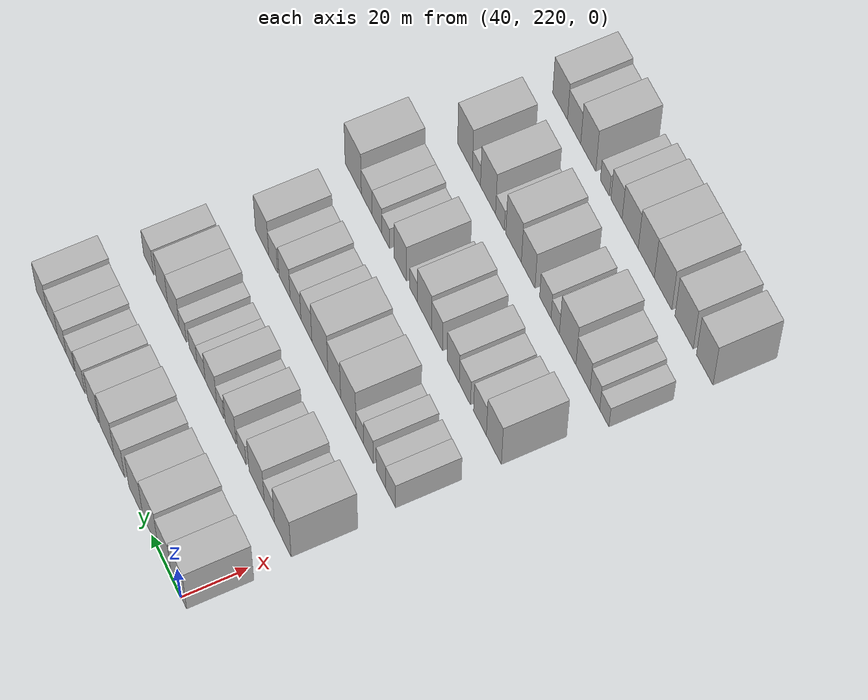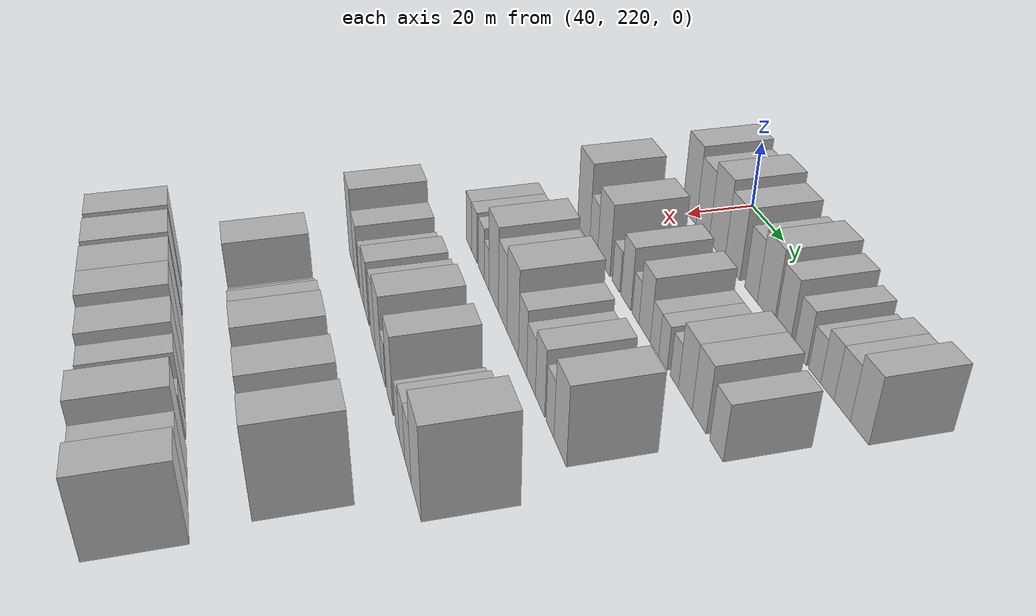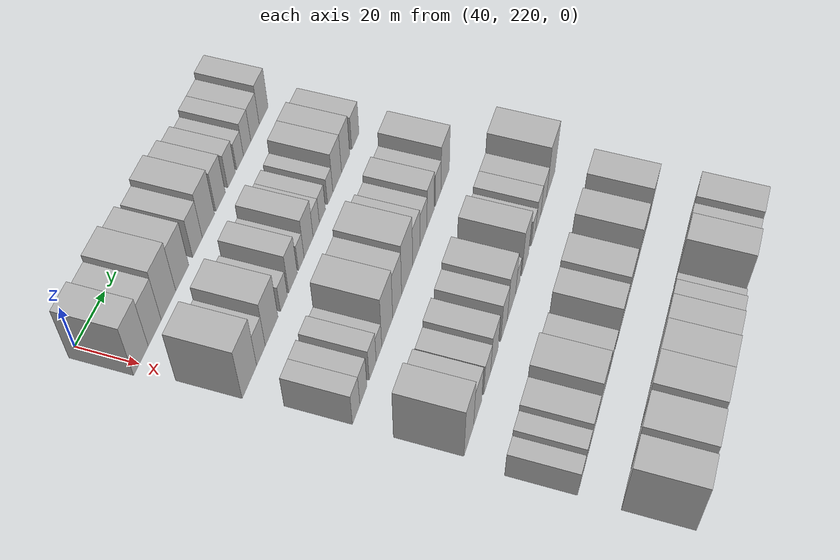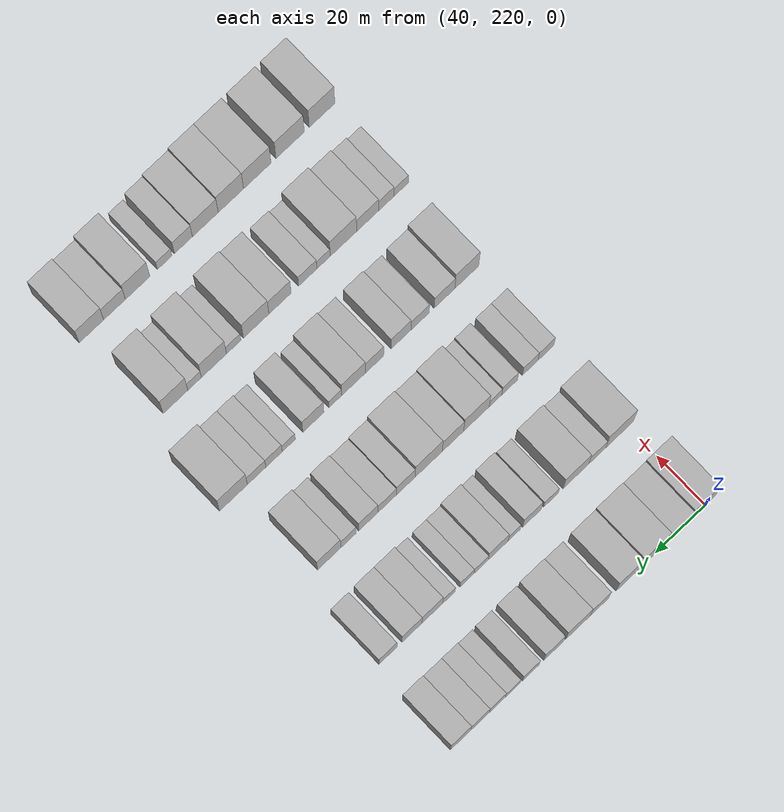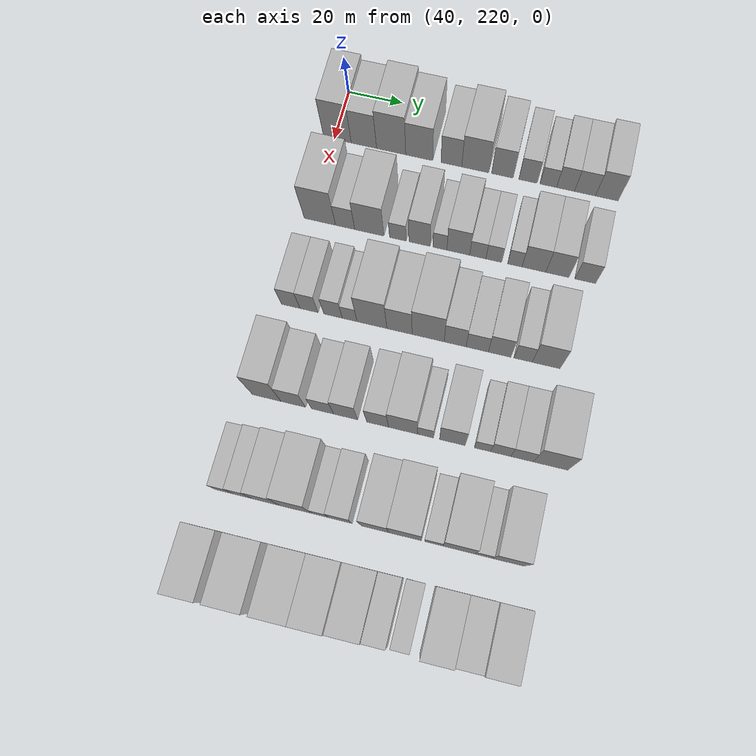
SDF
<sdf version="1.6">
 <world name="default">
  <model name="building_80">
   <static>1</static>
   <pose>50.0000 221.1915 0 0.000000 0.000000 0.000000</pose>
   <link name="link">
    <pose>0 0 12.00 0 0 0</pose>
    <collision name="collision"><geometry><box><size>20.0000 10.1454 24.0000</size></box></geometry></collision>
    <visual name="visual">
     <cast_shadows>0</cast_shadows>
     <geometry><box><size>20.0000 10.1454 24.0000</size></box></geometry>
     <material>
      <script>
       <uri>model://HANNAS_wall/materials/scripts</uri>
       <uri>model://HANNAS_wall/materials/textures</uri>
       <name>vrc/HANNAS_wall</name>
      </script>
     </material>
    </visual>
   </link>
  </model>
  <model name="building_81">
   <static>1</static>
   <pose>50.0000 230.9055 0 0.000000 0.000000 0.000000</pose>
   <link name="link">
    <pose>0 0 10.50 0 0 0</pose>
    <collision name="collision"><geometry><box><size>20.0000 9.2827 21.0000</size></box></geometry></collision>
    <visual name="visual">
     <cast_shadows>0</cast_shadows>
     <geometry><box><size>20.0000 9.2827 21.0000</size></box></geometry>
     <material>
      <script>
       <uri>model://HANNAS_wall/materials/scripts</uri>
       <uri>model://HANNAS_wall/materials/textures</uri>
       <name>vrc/HANNAS_wall</name>
      </script>
     </material>
    </visual>
   </link>
  </model>
  <model name="building_82">
   <static>1</static>
   <pose>50.0000 240.8791 0 0.000000 0.000000 0.000000</pose>
   <link name="link">
    <pose>0 0 12.00 0 0 0</pose>
    <collision name="collision"><geometry><box><size>20.0000 10.6645 24.0000</size></box></geometry></collision>
    <visual name="visual">
     <cast_shadows>0</cast_shadows>
     <geometry><box><size>20.0000 10.6645 24.0000</size></box></geometry>
     <material>
      <script>
       <uri>model://HANNAS_wall/materials/scripts</uri>
       <uri>model://HANNAS_wall/materials/textures</uri>
       <name>vrc/HANNAS_wall</name>
      </script>
     </material>
    </visual>
   </link>
  </model>
  <model name="building_83">
   <static>1</static>
   <pose>50.0000 251.1147 0 0.000000 0.000000 0.000000</pose>
   <link name="link">
    <pose>0 0 10.50 0 0 0</pose>
    <collision name="collision"><geometry><box><size>20.0000 9.8066 21.0000</size></box></geometry></collision>
    <visual name="visual">
     <cast_shadows>0</cast_shadows>
     <geometry><box><size>20.0000 9.8066 21.0000</size></box></geometry>
     <material>
      <script>
       <uri>model://HANNAS_wall/materials/scripts</uri>
       <uri>model://HANNAS_wall/materials/textures</uri>
       <name>vrc/HANNAS_wall</name>
      </script>
     </material>
    </visual>
   </link>
  </model>
  <model name="building_84">
   <static>1</static>
   <pose>50.0000 262.7763 0 0.000000 0.000000 0.000000</pose>
   <link name="link">
    <pose>0 0 9.00 0 0 0</pose>
    <collision name="collision"><geometry><box><size>20.0000 7.5166 18.0000</size></box></geometry></collision>
    <visual name="visual">
     <cast_shadows>0</cast_shadows>
     <geometry><box><size>20.0000 7.5166 18.0000</size></box></geometry>
     <material>
      <script>
       <uri>model://HANNAS_wall/materials/scripts</uri>
       <uri>model://HANNAS_wall/materials/textures</uri>
       <name>vrc/HANNAS_wall</name>
      </script>
     </material>
    </visual>
   </link>
  </model>
  <model name="building_85">
   <static>1</static>
   <pose>50.0000 271.4097 0 0.000000 0.000000 0.000000</pose>
   <link name="link">
    <pose>0 0 10.50 0 0 0</pose>
    <collision name="collision"><geometry><box><size>20.0000 9.7501 21.0000</size></box></geometry></collision>
    <visual name="visual">
     <cast_shadows>0</cast_shadows>
     <geometry><box><size>20.0000 9.7501 21.0000</size></box></geometry>
     <material>
      <script>
       <uri>model://HANNAS_wall/materials/scripts</uri>
       <uri>model://HANNAS_wall/materials/textures</uri>
       <name>vrc/HANNAS_wall</name>
      </script>
     </material>
    </visual>
   </link>
  </model>
  <model name="building_86">
   <static>1</static>
   <pose>50.0000 281.1702 0 0.000000 0.000000 0.000000</pose>
   <link name="link">
    <pose>0 0 9.00 0 0 0</pose>
    <collision name="collision"><geometry><box><size>20.0000 7.7707 18.0000</size></box></geometry></collision>
    <visual name="visual">
     <cast_shadows>0</cast_shadows>
     <geometry><box><size>20.0000 7.7707 18.0000</size></box></geometry>
     <material>
      <script>
       <uri>model://HANNAS_wall/materials/scripts</uri>
       <uri>model://HANNAS_wall/materials/textures</uri>
       <name>vrc/HANNAS_wall</name>
      </script>
     </material>
    </visual>
   </link>
  </model>
  <model name="building_87">
   <static>1</static>
   <pose>50.0000 290.3380 0 0.000000 0.000000 0.000000</pose>
   <link name="link">
    <pose>0 0 7.50 0 0 0</pose>
    <collision name="collision"><geometry><box><size>20.0000 6.5649 15.0000</size></box></geometry></collision>
    <visual name="visual">
     <cast_shadows>0</cast_shadows>
     <geometry><box><size>20.0000 6.5649 15.0000</size></box></geometry>
     <material>
      <script>
       <uri>model://HANNAS_wall/materials/scripts</uri>
       <uri>model://HANNAS_wall/materials/textures</uri>
       <name>vrc/HANNAS_wall</name>
      </script>
     </material>
    </visual>
   </link>
  </model>
  <model name="building_88">
   <static>1</static>
   <pose>50.0000 297.5629 0 0.000000 0.000000 0.000000</pose>
   <link name="link">
    <pose>0 0 6.00 0 0 0</pose>
    <collision name="collision"><geometry><box><size>20.0000 5.8850 12.0000</size></box></geometry></collision>
    <visual name="visual">
     <cast_shadows>0</cast_shadows>
     <geometry><box><size>20.0000 5.8850 12.0000</size></box></geometry>
     <material>
      <script>
       <uri>model://HANNAS_wall/materials/scripts</uri>
       <uri>model://HANNAS_wall/materials/textures</uri>
       <name>vrc/HANNAS_wall</name>
      </script>
     </material>
    </visual>
   </link>
  </model>
  <model name="building_89">
   <static>1</static>
   <pose>50.0000 303.7001 0 0.000000 0.000000 0.000000</pose>
   <link name="link">
    <pose>0 0 7.50 0 0 0</pose>
    <collision name="collision"><geometry><box><size>20.0000 6.3894 15.0000</size></box></geometry></collision>
    <visual name="visual">
     <cast_shadows>0</cast_shadows>
     <geometry><box><size>20.0000 6.3894 15.0000</size></box></geometry>
     <material>
      <script>
       <uri>model://HANNAS_wall/materials/scripts</uri>
       <uri>model://HANNAS_wall/materials/textures</uri>
       <name>vrc/HANNAS_wall</name>
      </script>
     </material>
    </visual>
   </link>
  </model>
  <model name="building_90">
   <static>1</static>
   <pose>50.0000 310.6107 0 0.000000 0.000000 0.000000</pose>
   <link name="link">
    <pose>0 0 7.50 0 0 0</pose>
    <collision name="collision"><geometry><box><size>20.0000 7.4317 15.0000</size></box></geometry></collision>
    <visual name="visual">
     <cast_shadows>0</cast_shadows>
     <geometry><box><size>20.0000 7.4317 15.0000</size></box></geometry>
     <material>
      <script>
       <uri>model://HANNAS_wall/materials/scripts</uri>
       <uri>model://HANNAS_wall/materials/textures</uri>
       <name>vrc/HANNAS_wall</name>
      </script>
     </material>
    </visual>
   </link>
  </model>
  <model name="building_91">
   <static>1</static>
   <pose>50.0000 318.3398 0 0.000000 0.000000 0.000000</pose>
   <link name="link">
    <pose>0 0 9.00 0 0 0</pose>
    <collision name="collision"><geometry><box><size>20.0000 8.0265 18.0000</size></box></geometry></collision>
    <visual name="visual">
     <cast_shadows>0</cast_shadows>
     <geometry><box><size>20.0000 8.0265 18.0000</size></box></geometry>
     <material>
      <script>
       <uri>model://HANNAS_wall/materials/scripts</uri>
       <uri>model://HANNAS_wall/materials/textures</uri>
       <name>vrc/HANNAS_wall</name>
      </script>
     </material>
    </visual>
   </link>
  </model>
  <model name="building_201">
   <static>1</static>
   <pose>82.0000 223.6437 0 0.000000 0.000000 0.000000</pose>
   <link name="link">
    <pose>0 0 12.00 0 0 0</pose>
    <collision name="collision"><geometry><box><size>20.0000 11.1601 24.0000</size></box></geometry></collision>
    <visual name="visual">
     <cast_shadows>0</cast_shadows>
     <geometry><box><size>20.0000 11.1601 24.0000</size></box></geometry>
     <material>
      <script>
       <uri>model://HANNAS_wall/materials/scripts</uri>
       <uri>model://HANNAS_wall/materials/textures</uri>
       <name>vrc/HANNAS_wall</name>
      </script>
     </material>
    </visual>
   </link>
  </model>
  <model name="building_202">
   <static>1</static>
   <pose>82.0000 232.6557 0 0.000000 0.000000 0.000000</pose>
   <link name="link">
    <pose>0 0 7.50 0 0 0</pose>
    <collision name="collision"><geometry><box><size>20.0000 6.8640 15.0000</size></box></geometry></collision>
    <visual name="visual">
     <cast_shadows>0</cast_shadows>
     <geometry><box><size>20.0000 6.8640 15.0000</size></box></geometry>
     <material>
      <script>
       <uri>model://HANNAS_wall/materials/scripts</uri>
       <uri>model://HANNAS_wall/materials/textures</uri>
       <name>vrc/HANNAS_wall</name>
      </script>
     </material>
    </visual>
   </link>
  </model>
  <model name="building_203">
   <static>1</static>
   <pose>82.0000 241.2572 0 0.000000 0.000000 0.000000</pose>
   <link name="link">
    <pose>0 0 10.50 0 0 0</pose>
    <collision name="collision"><geometry><box><size>20.0000 10.3390 21.0000</size></box></geometry></collision>
    <visual name="visual">
     <cast_shadows>0</cast_shadows>
     <geometry><box><size>20.0000 10.3390 21.0000</size></box></geometry>
     <material>
      <script>
       <uri>model://HANNAS_wall/materials/scripts</uri>
       <uri>model://HANNAS_wall/materials/textures</uri>
       <name>vrc/HANNAS_wall</name>
      </script>
     </material>
    </visual>
   </link>
  </model>
  <model name="building_204">
   <static>1</static>
   <pose>82.0000 251.3590 0 0.000000 0.000000 0.000000</pose>
   <link name="link">
    <pose>0 0 6.00 0 0 0</pose>
    <collision name="collision"><geometry><box><size>20.0000 5.8646 12.0000</size></box></geometry></collision>
    <visual name="visual">
     <cast_shadows>0</cast_shadows>
     <geometry><box><size>20.0000 5.8646 12.0000</size></box></geometry>
     <material>
      <script>
       <uri>model://HANNAS_wall/materials/scripts</uri>
       <uri>model://HANNAS_wall/materials/textures</uri>
       <name>vrc/HANNAS_wall</name>
      </script>
     </material>
    </visual>
   </link>
  </model>
  <model name="building_205">
   <static>1</static>
   <pose>82.0000 259.0124 0 0.000000 0.000000 0.000000</pose>
   <link name="link">
    <pose>0 0 9.00 0 0 0</pose>
    <collision name="collision"><geometry><box><size>20.0000 7.4422 18.0000</size></box></geometry></collision>
    <visual name="visual">
     <cast_shadows>0</cast_shadows>
     <geometry><box><size>20.0000 7.4422 18.0000</size></box></geometry>
     <material>
      <script>
       <uri>model://HANNAS_wall/materials/scripts</uri>
       <uri>model://HANNAS_wall/materials/textures</uri>
       <name>vrc/HANNAS_wall</name>
      </script>
     </material>
    </visual>
   </link>
  </model>
  <model name="building_206">
   <static>1</static>
   <pose>82.0000 266.1731 0 0.000000 0.000000 0.000000</pose>
   <link name="link">
    <pose>0 0 6.00 0 0 0</pose>
    <collision name="collision"><geometry><box><size>20.0000 4.8792 12.0000</size></box></geometry></collision>
    <visual name="visual">
     <cast_shadows>0</cast_shadows>
     <geometry><box><size>20.0000 4.8792 12.0000</size></box></geometry>
     <material>
      <script>
       <uri>model://HANNAS_wall/materials/scripts</uri>
       <uri>model://HANNAS_wall/materials/textures</uri>
       <name>vrc/HANNAS_wall</name>
      </script>
     </material>
    </visual>
   </link>
  </model>
  <model name="building_207">
   <static>1</static>
   <pose>82.0000 272.6101 0 0.000000 0.000000 0.000000</pose>
   <link name="link">
    <pose>0 0 9.00 0 0 0</pose>
    <collision name="collision"><geometry><box><size>20.0000 7.9948 18.0000</size></box></geometry></collision>
    <visual name="visual">
     <cast_shadows>0</cast_shadows>
     <geometry><box><size>20.0000 7.9948 18.0000</size></box></geometry>
     <material>
      <script>
       <uri>model://HANNAS_wall/materials/scripts</uri>
       <uri>model://HANNAS_wall/materials/textures</uri>
       <name>vrc/HANNAS_wall</name>
      </script>
     </material>
    </visual>
   </link>
  </model>
  <model name="building_208">
   <static>1</static>
   <pose>82.0000 279.4374 0 0.000000 0.000000 0.000000</pose>
   <link name="link">
    <pose>0 0 6.00 0 0 0</pose>
    <collision name="collision"><geometry><box><size>20.0000 5.6598 12.0000</size></box></geometry></collision>
    <visual name="visual">
     <cast_shadows>0</cast_shadows>
     <geometry><box><size>20.0000 5.6598 12.0000</size></box></geometry>
     <material>
      <script>
       <uri>model://HANNAS_wall/materials/scripts</uri>
       <uri>model://HANNAS_wall/materials/textures</uri>
       <name>vrc/HANNAS_wall</name>
      </script>
     </material>
    </visual>
   </link>
  </model>
  <model name="building_209">
   <static>1</static>
   <pose>82.0000 285.0318 0 0.000000 0.000000 0.000000</pose>
   <link name="link">
    <pose>0 0 6.00 0 0 0</pose>
    <collision name="collision"><geometry><box><size>20.0000 5.5289 12.0000</size></box></geometry></collision>
    <visual name="visual">
     <cast_shadows>0</cast_shadows>
     <geometry><box><size>20.0000 5.5289 12.0000</size></box></geometry>
     <material>
      <script>
       <uri>model://HANNAS_wall/materials/scripts</uri>
       <uri>model://HANNAS_wall/materials/textures</uri>
       <name>vrc/HANNAS_wall</name>
      </script>
     </material>
    </visual>
   </link>
  </model>
  <model name="building_210">
   <static>1</static>
   <pose>82.0000 292.2857 0 0.000000 0.000000 0.000000</pose>
   <link name="link">
    <pose>0 0 6.00 0 0 0</pose>
    <collision name="collision"><geometry><box><size>20.0000 4.9790 12.0000</size></box></geometry></collision>
    <visual name="visual">
     <cast_shadows>0</cast_shadows>
     <geometry><box><size>20.0000 4.9790 12.0000</size></box></geometry>
     <material>
      <script>
       <uri>model://HANNAS_wall/materials/scripts</uri>
       <uri>model://HANNAS_wall/materials/textures</uri>
       <name>vrc/HANNAS_wall</name>
      </script>
     </material>
    </visual>
   </link>
  </model>
  <model name="building_211">
   <static>1</static>
   <pose>82.0000 298.9141 0 0.000000 0.000000 0.000000</pose>
   <link name="link">
    <pose>0 0 9.00 0 0 0</pose>
    <collision name="collision"><geometry><box><size>20.0000 8.2778 18.0000</size></box></geometry></collision>
    <visual name="visual">
     <cast_shadows>0</cast_shadows>
     <geometry><box><size>20.0000 8.2778 18.0000</size></box></geometry>
     <material>
      <script>
       <uri>model://HANNAS_wall/materials/scripts</uri>
       <uri>model://HANNAS_wall/materials/textures</uri>
       <name>vrc/HANNAS_wall</name>
      </script>
     </material>
    </visual>
   </link>
  </model>
  <model name="building_212">
   <static>1</static>
   <pose>82.0000 307.0344 0 0.000000 0.000000 0.000000</pose>
   <link name="link">
    <pose>0 0 9.00 0 0 0</pose>
    <collision name="collision"><geometry><box><size>20.0000 7.9627 18.0000</size></box></geometry></collision>
    <visual name="visual">
     <cast_shadows>0</cast_shadows>
     <geometry><box><size>20.0000 7.9627 18.0000</size></box></geometry>
     <material>
      <script>
       <uri>model://HANNAS_wall/materials/scripts</uri>
       <uri>model://HANNAS_wall/materials/textures</uri>
       <name>vrc/HANNAS_wall</name>
      </script>
     </material>
    </visual>
   </link>
  </model>
  <model name="building_213">
   <static>1</static>
   <pose>82.0000 316.5923 0 0.000000 0.000000 0.000000</pose>
   <link name="link">
    <pose>0 0 7.50 0 0 0</pose>
    <collision name="collision"><geometry><box><size>20.0000 7.1532 15.0000</size></box></geometry></collision>
    <visual name="visual">
     <cast_shadows>0</cast_shadows>
     <geometry><box><size>20.0000 7.1532 15.0000</size></box></geometry>
     <material>
      <script>
       <uri>model://HANNAS_wall/materials/scripts</uri>
       <uri>model://HANNAS_wall/materials/textures</uri>
       <name>vrc/HANNAS_wall</name>
      </script>
     </material>
    </visual>
   </link>
  </model>
  <model name="building_320">
   <static>1</static>
   <pose>114.0000 222.4756 0 0.000000 0.000000 0.000000</pose>
   <link name="link">
    <pose>0 0 7.50 0 0 0</pose>
    <collision name="collision"><geometry><box><size>20.0000 6.4086 15.0000</size></box></geometry></collision>
    <visual name="visual">
     <cast_shadows>0</cast_shadows>
     <geometry><box><size>20.0000 6.4086 15.0000</size></box></geometry>
     <material>
      <script>
       <uri>model://HANNAS_wall/materials/scripts</uri>
       <uri>model://HANNAS_wall/materials/textures</uri>
       <name>vrc/HANNAS_wall</name>
      </script>
     </material>
    </visual>
   </link>
  </model>
  <model name="building_321">
   <static>1</static>
   <pose>114.0000 228.8132 0 0.000000 0.000000 0.000000</pose>
   <link name="link">
    <pose>0 0 7.50 0 0 0</pose>
    <collision name="collision"><geometry><box><size>20.0000 6.2664 15.0000</size></box></geometry></collision>
    <visual name="visual">
     <cast_shadows>0</cast_shadows>
     <geometry><box><size>20.0000 6.2664 15.0000</size></box></geometry>
     <material>
      <script>
       <uri>model://HANNAS_wall/materials/scripts</uri>
       <uri>model://HANNAS_wall/materials/textures</uri>
       <name>vrc/HANNAS_wall</name>
      </script>
     </material>
    </visual>
   </link>
  </model>
  <model name="building_322">
   <static>1</static>
   <pose>114.0000 237.1206 0 0.000000 0.000000 0.000000</pose>
   <link name="link">
    <pose>0 0 7.50 0 0 0</pose>
    <collision name="collision"><geometry><box><size>20.0000 6.3484 15.0000</size></box></geometry></collision>
    <visual name="visual">
     <cast_shadows>0</cast_shadows>
     <geometry><box><size>20.0000 6.3484 15.0000</size></box></geometry>
     <material>
      <script>
       <uri>model://HANNAS_wall/materials/scripts</uri>
       <uri>model://HANNAS_wall/materials/textures</uri>
       <name>vrc/HANNAS_wall</name>
      </script>
     </material>
    </visual>
   </link>
  </model>
  <model name="building_323">
   <static>1</static>
   <pose>114.0000 242.8376 0 0.000000 0.000000 0.000000</pose>
   <link name="link">
    <pose>0 0 6.00 0 0 0</pose>
    <collision name="collision"><geometry><box><size>20.0000 5.0856 12.0000</size></box></geometry></collision>
    <visual name="visual">
     <cast_shadows>0</cast_shadows>
     <geometry><box><size>20.0000 5.0856 12.0000</size></box></geometry>
     <material>
      <script>
       <uri>model://HANNAS_wall/materials/scripts</uri>
       <uri>model://HANNAS_wall/materials/textures</uri>
       <name>vrc/HANNAS_wall</name>
      </script>
     </material>
    </visual>
   </link>
  </model>
  <model name="building_324">
   <static>1</static>
   <pose>114.0000 250.5163 0 0.000000 0.000000 0.000000</pose>
   <link name="link">
    <pose>0 0 12.00 0 0 0</pose>
    <collision name="collision"><geometry><box><size>20.0000 10.2716 24.0000</size></box></geometry></collision>
    <visual name="visual">
     <cast_shadows>0</cast_shadows>
     <geometry><box><size>20.0000 10.2716 24.0000</size></box></geometry>
     <material>
      <script>
       <uri>model://HANNAS_wall/materials/scripts</uri>
       <uri>model://HANNAS_wall/materials/textures</uri>
       <name>vrc/HANNAS_wall</name>
      </script>
     </material>
    </visual>
   </link>
  </model>
  <model name="building_325">
   <static>1</static>
   <pose>114.0000 259.9618 0 0.000000 0.000000 0.000000</pose>
   <link name="link">
    <pose>0 0 10.50 0 0 0</pose>
    <collision name="collision"><geometry><box><size>20.0000 8.6194 21.0000</size></box></geometry></collision>
    <visual name="visual">
     <cast_shadows>0</cast_shadows>
     <geometry><box><size>20.0000 8.6194 21.0000</size></box></geometry>
     <material>
      <script>
       <uri>model://HANNAS_wall/materials/scripts</uri>
       <uri>model://HANNAS_wall/materials/textures</uri>
       <name>vrc/HANNAS_wall</name>
      </script>
     </material>
    </visual>
   </link>
  </model>
  <model name="building_326">
   <static>1</static>
   <pose>114.0000 269.7150 0 0.000000 0.000000 0.000000</pose>
   <link name="link">
    <pose>0 0 12.00 0 0 0</pose>
    <collision name="collision"><geometry><box><size>20.0000 10.8871 24.0000</size></box></geometry></collision>
    <visual name="visual">
     <cast_shadows>0</cast_shadows>
     <geometry><box><size>20.0000 10.8871 24.0000</size></box></geometry>
     <material>
      <script>
       <uri>model://HANNAS_wall/materials/scripts</uri>
       <uri>model://HANNAS_wall/materials/textures</uri>
       <name>vrc/HANNAS_wall</name>
      </script>
     </material>
    </visual>
   </link>
  </model>
  <model name="building_327">
   <static>1</static>
   <pose>114.0000 278.8699 0 0.000000 0.000000 0.000000</pose>
   <link name="link">
    <pose>0 0 9.00 0 0 0</pose>
    <collision name="collision"><geometry><box><size>20.0000 7.4226 18.0000</size></box></geometry></collision>
    <visual name="visual">
     <cast_shadows>0</cast_shadows>
     <geometry><box><size>20.0000 7.4226 18.0000</size></box></geometry>
     <material>
      <script>
       <uri>model://HANNAS_wall/materials/scripts</uri>
       <uri>model://HANNAS_wall/materials/textures</uri>
       <name>vrc/HANNAS_wall</name>
      </script>
     </material>
    </visual>
   </link>
  </model>
  <model name="building_328">
   <static>1</static>
   <pose>114.0000 286.3080 0 0.000000 0.000000 0.000000</pose>
   <link name="link">
    <pose>0 0 7.50 0 0 0</pose>
    <collision name="collision"><geometry><box><size>20.0000 7.4537 15.0000</size></box></geometry></collision>
    <visual name="visual">
     <cast_shadows>0</cast_shadows>
     <geometry><box><size>20.0000 7.4537 15.0000</size></box></geometry>
     <material>
      <script>
       <uri>model://HANNAS_wall/materials/scripts</uri>
       <uri>model://HANNAS_wall/materials/textures</uri>
       <name>vrc/HANNAS_wall</name>
      </script>
     </material>
    </visual>
   </link>
  </model>
  <model name="building_329">
   <static>1</static>
   <pose>114.0000 293.8536 0 0.000000 0.000000 0.000000</pose>
   <link name="link">
    <pose>0 0 9.00 0 0 0</pose>
    <collision name="collision"><geometry><box><size>20.0000 7.6375 18.0000</size></box></geometry></collision>
    <visual name="visual">
     <cast_shadows>0</cast_shadows>
     <geometry><box><size>20.0000 7.6375 18.0000</size></box></geometry>
     <material>
      <script>
       <uri>model://HANNAS_wall/materials/scripts</uri>
       <uri>model://HANNAS_wall/materials/textures</uri>
       <name>vrc/HANNAS_wall</name>
      </script>
     </material>
    </visual>
   </link>
  </model>
  <model name="building_330">
   <static>1</static>
   <pose>114.0000 301.7481 0 0.000000 0.000000 0.000000</pose>
   <link name="link">
    <pose>0 0 7.50 0 0 0</pose>
    <collision name="collision"><geometry><box><size>20.0000 6.1516 15.0000</size></box></geometry></collision>
    <visual name="visual">
     <cast_shadows>0</cast_shadows>
     <geometry><box><size>20.0000 6.1516 15.0000</size></box></geometry>
     <material>
      <script>
       <uri>model://HANNAS_wall/materials/scripts</uri>
       <uri>model://HANNAS_wall/materials/textures</uri>
       <name>vrc/HANNAS_wall</name>
      </script>
     </material>
    </visual>
   </link>
  </model>
  <model name="building_331">
   <static>1</static>
   <pose>114.0000 309.4790 0 0.000000 0.000000 0.000000</pose>
   <link name="link">
    <pose>0 0 10.50 0 0 0</pose>
    <collision name="collision"><geometry><box><size>20.0000 9.3102 21.0000</size></box></geometry></collision>
    <visual name="visual">
     <cast_shadows>0</cast_shadows>
     <geometry><box><size>20.0000 9.3102 21.0000</size></box></geometry>
     <material>
      <script>
       <uri>model://HANNAS_wall/materials/scripts</uri>
       <uri>model://HANNAS_wall/materials/textures</uri>
       <name>vrc/HANNAS_wall</name>
      </script>
     </material>
    </visual>
   </link>
  </model>
  <model name="building_443">
   <static>1</static>
   <pose>146.0000 223.6153 0 0.000000 0.000000 0.000000</pose>
   <link name="link">
    <pose>0 0 12.00 0 0 0</pose>
    <collision name="collision"><geometry><box><size>20.0000 9.6421 24.0000</size></box></geometry></collision>
    <visual name="visual">
     <cast_shadows>0</cast_shadows>
     <geometry><box><size>20.0000 9.6421 24.0000</size></box></geometry>
     <material>
      <script>
       <uri>model://HANNAS_wall/materials/scripts</uri>
       <uri>model://HANNAS_wall/materials/textures</uri>
       <name>vrc/HANNAS_wall</name>
      </script>
     </material>
    </visual>
   </link>
  </model>
  <model name="building_444">
   <static>1</static>
   <pose>146.0000 232.5971 0 0.000000 0.000000 0.000000</pose>
   <link name="link">
    <pose>0 0 9.00 0 0 0</pose>
    <collision name="collision"><geometry><box><size>20.0000 8.3213 18.0000</size></box></geometry></collision>
    <visual name="visual">
     <cast_shadows>0</cast_shadows>
     <geometry><box><size>20.0000 8.3213 18.0000</size></box></geometry>
     <material>
      <script>
       <uri>model://HANNAS_wall/materials/scripts</uri>
       <uri>model://HANNAS_wall/materials/textures</uri>
       <name>vrc/HANNAS_wall</name>
      </script>
     </material>
    </visual>
   </link>
  </model>
  <model name="building_445">
   <static>1</static>
   <pose>146.0000 242.4350 0 0.000000 0.000000 0.000000</pose>
   <link name="link">
    <pose>0 0 7.50 0 0 0</pose>
    <collision name="collision"><geometry><box><size>20.0000 7.3545 15.0000</size></box></geometry></collision>
    <visual name="visual">
     <cast_shadows>0</cast_shadows>
     <geometry><box><size>20.0000 7.3545 15.0000</size></box></geometry>
     <material>
      <script>
       <uri>model://HANNAS_wall/materials/scripts</uri>
       <uri>model://HANNAS_wall/materials/textures</uri>
       <name>vrc/HANNAS_wall</name>
      </script>
     </material>
    </visual>
   </link>
  </model>
  <model name="building_446">
   <static>1</static>
   <pose>146.0000 250.1114 0 0.000000 0.000000 0.000000</pose>
   <link name="link">
    <pose>0 0 9.00 0 0 0</pose>
    <collision name="collision"><geometry><box><size>20.0000 7.9984 18.0000</size></box></geometry></collision>
    <visual name="visual">
     <cast_shadows>0</cast_shadows>
     <geometry><box><size>20.0000 7.9984 18.0000</size></box></geometry>
     <material>
      <script>
       <uri>model://HANNAS_wall/materials/scripts</uri>
       <uri>model://HANNAS_wall/materials/textures</uri>
       <name>vrc/HANNAS_wall</name>
      </script>
     </material>
    </visual>
   </link>
  </model>
  <model name="building_447">
   <static>1</static>
   <pose>146.0000 260.7335 0 0.000000 0.000000 0.000000</pose>
   <link name="link">
    <pose>0 0 9.00 0 0 0</pose>
    <collision name="collision"><geometry><box><size>20.0000 7.2458 18.0000</size></box></geometry></collision>
    <visual name="visual">
     <cast_shadows>0</cast_shadows>
     <geometry><box><size>20.0000 7.2458 18.0000</size></box></geometry>
     <material>
      <script>
       <uri>model://HANNAS_wall/materials/scripts</uri>
       <uri>model://HANNAS_wall/materials/textures</uri>
       <name>vrc/HANNAS_wall</name>
      </script>
     </material>
    </visual>
   </link>
  </model>
  <model name="building_448">
   <static>1</static>
   <pose>146.0000 269.1405 0 0.000000 0.000000 0.000000</pose>
   <link name="link">
    <pose>0 0 10.50 0 0 0</pose>
    <collision name="collision"><geometry><box><size>20.0000 9.5681 21.0000</size></box></geometry></collision>
    <visual name="visual">
     <cast_shadows>0</cast_shadows>
     <geometry><box><size>20.0000 9.5681 21.0000</size></box></geometry>
     <material>
      <script>
       <uri>model://HANNAS_wall/materials/scripts</uri>
       <uri>model://HANNAS_wall/materials/textures</uri>
       <name>vrc/HANNAS_wall</name>
      </script>
     </material>
    </visual>
   </link>
  </model>
  <model name="building_449">
   <static>1</static>
   <pose>146.0000 276.5126 0 0.000000 0.000000 0.000000</pose>
   <link name="link">
    <pose>0 0 6.00 0 0 0</pose>
    <collision name="collision"><geometry><box><size>20.0000 5.1762 12.0000</size></box></geometry></collision>
    <visual name="visual">
     <cast_shadows>0</cast_shadows>
     <geometry><box><size>20.0000 5.1762 12.0000</size></box></geometry>
     <material>
      <script>
       <uri>model://HANNAS_wall/materials/scripts</uri>
       <uri>model://HANNAS_wall/materials/textures</uri>
       <name>vrc/HANNAS_wall</name>
      </script>
     </material>
    </visual>
   </link>
  </model>
  <model name="building_450">
   <static>1</static>
   <pose>146.0000 285.3099 0 0.000000 0.000000 0.000000</pose>
   <link name="link">
    <pose>0 0 10.50 0 0 0</pose>
    <collision name="collision"><geometry><box><size>20.0000 8.4185 21.0000</size></box></geometry></collision>
    <visual name="visual">
     <cast_shadows>0</cast_shadows>
     <geometry><box><size>20.0000 8.4185 21.0000</size></box></geometry>
     <material>
      <script>
       <uri>model://HANNAS_wall/materials/scripts</uri>
       <uri>model://HANNAS_wall/materials/textures</uri>
       <name>vrc/HANNAS_wall</name>
      </script>
     </material>
    </visual>
   </link>
  </model>
  <model name="building_451">
   <static>1</static>
   <pose>146.0000 295.1610 0 0.000000 0.000000 0.000000</pose>
   <link name="link">
    <pose>0 0 6.00 0 0 0</pose>
    <collision name="collision"><geometry><box><size>20.0000 5.2836 12.0000</size></box></geometry></collision>
    <visual name="visual">
     <cast_shadows>0</cast_shadows>
     <geometry><box><size>20.0000 5.2836 12.0000</size></box></geometry>
     <material>
      <script>
       <uri>model://HANNAS_wall/materials/scripts</uri>
       <uri>model://HANNAS_wall/materials/textures</uri>
       <name>vrc/HANNAS_wall</name>
      </script>
     </material>
    </visual>
   </link>
  </model>
  <model name="building_452">
   <static>1</static>
   <pose>146.0000 301.0598 0 0.000000 0.000000 0.000000</pose>
   <link name="link">
    <pose>0 0 7.50 0 0 0</pose>
    <collision name="collision"><geometry><box><size>20.0000 6.5141 15.0000</size></box></geometry></collision>
    <visual name="visual">
     <cast_shadows>0</cast_shadows>
     <geometry><box><size>20.0000 6.5141 15.0000</size></box></geometry>
     <material>
      <script>
       <uri>model://HANNAS_wall/materials/scripts</uri>
       <uri>model://HANNAS_wall/materials/textures</uri>
       <name>vrc/HANNAS_wall</name>
      </script>
     </material>
    </visual>
   </link>
  </model>
  <model name="building_453">
   <static>1</static>
   <pose>146.0000 307.9963 0 0.000000 0.000000 0.000000</pose>
   <link name="link">
    <pose>0 0 7.50 0 0 0</pose>
    <collision name="collision"><geometry><box><size>20.0000 7.3589 15.0000</size></box></geometry></collision>
    <visual name="visual">
     <cast_shadows>0</cast_shadows>
     <geometry><box><size>20.0000 7.3589 15.0000</size></box></geometry>
     <material>
      <script>
       <uri>model://HANNAS_wall/materials/scripts</uri>
       <uri>model://HANNAS_wall/materials/textures</uri>
       <name>vrc/HANNAS_wall</name>
      </script>
     </material>
    </visual>
   </link>
  </model>
  <model name="building_454">
   <static>1</static>
   <pose>146.0000 317.2411 0 0.000000 0.000000 0.000000</pose>
   <link name="link">
    <pose>0 0 12.00 0 0 0</pose>
    <collision name="collision"><geometry><box><size>20.0000 11.1308 24.0000</size></box></geometry></collision>
    <visual name="visual">
     <cast_shadows>0</cast_shadows>
     <geometry><box><size>20.0000 11.1308 24.0000</size></box></geometry>
     <material>
      <script>
       <uri>model://HANNAS_wall/materials/scripts</uri>
       <uri>model://HANNAS_wall/materials/textures</uri>
       <name>vrc/HANNAS_wall</name>
      </script>
     </material>
    </visual>
   </link>
  </model>
  <model name="building_564">
   <static>1</static>
   <pose>178.0000 219.4130 0 0.000000 0.000000 0.000000</pose>
   <link name="link">
    <pose>0 0 6.00 0 0 0</pose>
    <collision name="collision"><geometry><box><size>20.0000 5.8530 12.0000</size></box></geometry></collision>
    <visual name="visual">
     <cast_shadows>0</cast_shadows>
     <geometry><box><size>20.0000 5.8530 12.0000</size></box></geometry>
     <material>
      <script>
       <uri>model://HANNAS_wall/materials/scripts</uri>
       <uri>model://HANNAS_wall/materials/textures</uri>
       <name>vrc/HANNAS_wall</name>
      </script>
     </material>
    </visual>
   </link>
  </model>
  <model name="building_565">
   <static>1</static>
   <pose>178.0000 225.3951 0 0.000000 0.000000 0.000000</pose>
   <link name="link">
    <pose>0 0 7.50 0 0 0</pose>
    <collision name="collision"><geometry><box><size>20.0000 6.1113 15.0000</size></box></geometry></collision>
    <visual name="visual">
     <cast_shadows>0</cast_shadows>
     <geometry><box><size>20.0000 6.1113 15.0000</size></box></geometry>
     <material>
      <script>
       <uri>model://HANNAS_wall/materials/scripts</uri>
       <uri>model://HANNAS_wall/materials/textures</uri>
       <name>vrc/HANNAS_wall</name>
      </script>
     </material>
    </visual>
   </link>
  </model>
  <model name="building_566">
   <static>1</static>
   <pose>178.0000 232.9383 0 0.000000 0.000000 0.000000</pose>
   <link name="link">
    <pose>0 0 9.00 0 0 0</pose>
    <collision name="collision"><geometry><box><size>20.0000 8.9751 18.0000</size></box></geometry></collision>
    <visual name="visual">
     <cast_shadows>0</cast_shadows>
     <geometry><box><size>20.0000 8.9751 18.0000</size></box></geometry>
     <material>
      <script>
       <uri>model://HANNAS_wall/materials/scripts</uri>
       <uri>model://HANNAS_wall/materials/textures</uri>
       <name>vrc/HANNAS_wall</name>
      </script>
     </material>
    </visual>
   </link>
  </model>
  <model name="building_567">
   <static>1</static>
   <pose>178.0000 242.7378 0 0.000000 0.000000 0.000000</pose>
   <link name="link">
    <pose>0 0 12.00 0 0 0</pose>
    <collision name="collision"><geometry><box><size>20.0000 10.6238 24.0000</size></box></geometry></collision>
    <visual name="visual">
     <cast_shadows>0</cast_shadows>
     <geometry><box><size>20.0000 10.6238 24.0000</size></box></geometry>
     <material>
      <script>
       <uri>model://HANNAS_wall/materials/scripts</uri>
       <uri>model://HANNAS_wall/materials/textures</uri>
       <name>vrc/HANNAS_wall</name>
      </script>
     </material>
    </visual>
   </link>
  </model>
  <model name="building_568">
   <static>1</static>
   <pose>178.0000 250.7353 0 0.000000 0.000000 0.000000</pose>
   <link name="link">
    <pose>0 0 6.00 0 0 0</pose>
    <collision name="collision"><geometry><box><size>20.0000 5.3712 12.0000</size></box></geometry></collision>
    <visual name="visual">
     <cast_shadows>0</cast_shadows>
     <geometry><box><size>20.0000 5.3712 12.0000</size></box></geometry>
     <material>
      <script>
       <uri>model://HANNAS_wall/materials/scripts</uri>
       <uri>model://HANNAS_wall/materials/textures</uri>
       <name>vrc/HANNAS_wall</name>
      </script>
     </material>
    </visual>
   </link>
  </model>
  <model name="building_569">
   <static>1</static>
   <pose>178.0000 257.1095 0 0.000000 0.000000 0.000000</pose>
   <link name="link">
    <pose>0 0 7.50 0 0 0</pose>
    <collision name="collision"><geometry><box><size>20.0000 7.3773 15.0000</size></box></geometry></collision>
    <visual name="visual">
     <cast_shadows>0</cast_shadows>
     <geometry><box><size>20.0000 7.3773 15.0000</size></box></geometry>
     <material>
      <script>
       <uri>model://HANNAS_wall/materials/scripts</uri>
       <uri>model://HANNAS_wall/materials/textures</uri>
       <name>vrc/HANNAS_wall</name>
      </script>
     </material>
    </visual>
   </link>
  </model>
  <model name="building_570">
   <static>1</static>
   <pose>178.0000 268.2500 0 0.000000 0.000000 0.000000</pose>
   <link name="link">
    <pose>0 0 10.50 0 0 0</pose>
    <collision name="collision"><geometry><box><size>20.0000 8.9037 21.0000</size></box></geometry></collision>
    <visual name="visual">
     <cast_shadows>0</cast_shadows>
     <geometry><box><size>20.0000 8.9037 21.0000</size></box></geometry>
     <material>
      <script>
       <uri>model://HANNAS_wall/materials/scripts</uri>
       <uri>model://HANNAS_wall/materials/textures</uri>
       <name>vrc/HANNAS_wall</name>
      </script>
     </material>
    </visual>
   </link>
  </model>
  <model name="building_571">
   <static>1</static>
   <pose>178.0000 277.8122 0 0.000000 0.000000 0.000000</pose>
   <link name="link">
    <pose>0 0 12.00 0 0 0</pose>
    <collision name="collision"><geometry><box><size>20.0000 10.2208 24.0000</size></box></geometry></collision>
    <visual name="visual">
     <cast_shadows>0</cast_shadows>
     <geometry><box><size>20.0000 10.2208 24.0000</size></box></geometry>
     <material>
      <script>
       <uri>model://HANNAS_wall/materials/scripts</uri>
       <uri>model://HANNAS_wall/materials/textures</uri>
       <name>vrc/HANNAS_wall</name>
      </script>
     </material>
    </visual>
   </link>
  </model>
  <model name="building_572">
   <static>1</static>
   <pose>178.0000 286.8167 0 0.000000 0.000000 0.000000</pose>
   <link name="link">
    <pose>0 0 6.00 0 0 0</pose>
    <collision name="collision"><geometry><box><size>20.0000 5.7883 12.0000</size></box></geometry></collision>
    <visual name="visual">
     <cast_shadows>0</cast_shadows>
     <geometry><box><size>20.0000 5.7883 12.0000</size></box></geometry>
     <material>
      <script>
       <uri>model://HANNAS_wall/materials/scripts</uri>
       <uri>model://HANNAS_wall/materials/textures</uri>
       <name>vrc/HANNAS_wall</name>
      </script>
     </material>
    </visual>
   </link>
  </model>
  <model name="building_573">
   <static>1</static>
   <pose>178.0000 294.7161 0 0.000000 0.000000 0.000000</pose>
   <link name="link">
    <pose>0 0 12.00 0 0 0</pose>
    <collision name="collision"><geometry><box><size>20.0000 10.0106 24.0000</size></box></geometry></collision>
    <visual name="visual">
     <cast_shadows>0</cast_shadows>
     <geometry><box><size>20.0000 10.0106 24.0000</size></box></geometry>
     <material>
      <script>
       <uri>model://HANNAS_wall/materials/scripts</uri>
       <uri>model://HANNAS_wall/materials/textures</uri>
       <name>vrc/HANNAS_wall</name>
      </script>
     </material>
    </visual>
   </link>
  </model>
  <model name="building_574">
   <static>1</static>
   <pose>178.0000 302.4504 0 0.000000 0.000000 0.000000</pose>
   <link name="link">
    <pose>0 0 6.00 0 0 0</pose>
    <collision name="collision"><geometry><box><size>20.0000 5.4579 12.0000</size></box></geometry></collision>
    <visual name="visual">
     <cast_shadows>0</cast_shadows>
     <geometry><box><size>20.0000 5.4579 12.0000</size></box></geometry>
     <material>
      <script>
       <uri>model://HANNAS_wall/materials/scripts</uri>
       <uri>model://HANNAS_wall/materials/textures</uri>
       <name>vrc/HANNAS_wall</name>
      </script>
     </material>
    </visual>
   </link>
  </model>
  <model name="building_575">
   <static>1</static>
   <pose>178.0000 310.1270 0 0.000000 0.000000 0.000000</pose>
   <link name="link">
    <pose>0 0 12.00 0 0 0</pose>
    <collision name="collision"><geometry><box><size>20.0000 9.8953 24.0000</size></box></geometry></collision>
    <visual name="visual">
     <cast_shadows>0</cast_shadows>
     <geometry><box><size>20.0000 9.8953 24.0000</size></box></geometry>
     <material>
      <script>
       <uri>model://HANNAS_wall/materials/scripts</uri>
       <uri>model://HANNAS_wall/materials/textures</uri>
       <name>vrc/HANNAS_wall</name>
      </script>
     </material>
    </visual>
   </link>
  </model>
  <model name="building_679">
   <static>1</static>
   <pose>210.0000 220.8964 0 0.000000 0.000000 0.000000</pose>
   <link name="link">
    <pose>0 0 12.00 0 0 0</pose>
    <collision name="collision"><geometry><box><size>20.0000 10.3131 24.0000</size></box></geometry></collision>
    <visual name="visual">
     <cast_shadows>0</cast_shadows>
     <geometry><box><size>20.0000 10.3131 24.0000</size></box></geometry>
     <material>
      <script>
       <uri>model://HANNAS_wall/materials/scripts</uri>
       <uri>model://HANNAS_wall/materials/textures</uri>
       <name>vrc/HANNAS_wall</name>
      </script>
     </material>
    </visual>
   </link>
  </model>
  <model name="building_680">
   <static>1</static>
   <pose>210.0000 233.7644 0 0.000000 0.000000 0.000000</pose>
   <link name="link">
    <pose>0 0 12.00 0 0 0</pose>
    <collision name="collision"><geometry><box><size>20.0000 11.4230 24.0000</size></box></geometry></collision>
    <visual name="visual">
     <cast_shadows>0</cast_shadows>
     <geometry><box><size>20.0000 11.4230 24.0000</size></box></geometry>
     <material>
      <script>
       <uri>model://HANNAS_wall/materials/scripts</uri>
       <uri>model://HANNAS_wall/materials/textures</uri>
       <name>vrc/HANNAS_wall</name>
      </script>
     </material>
    </visual>
   </link>
  </model>
  <model name="building_681">
   <static>1</static>
   <pose>210.0000 247.0071 0 0.000000 0.000000 0.000000</pose>
   <link name="link">
    <pose>0 0 12.00 0 0 0</pose>
    <collision name="collision"><geometry><box><size>20.0000 11.0623 24.0000</size></box></geometry></collision>
    <visual name="visual">
     <cast_shadows>0</cast_shadows>
     <geometry><box><size>20.0000 11.0623 24.0000</size></box></geometry>
     <material>
      <script>
       <uri>model://HANNAS_wall/materials/scripts</uri>
       <uri>model://HANNAS_wall/materials/textures</uri>
       <name>vrc/HANNAS_wall</name>
      </script>
     </material>
    </visual>
   </link>
  </model>
  <model name="building_682">
   <static>1</static>
   <pose>210.0000 257.6381 0 0.000000 0.000000 0.000000</pose>
   <link name="link">
    <pose>0 0 12.00 0 0 0</pose>
    <collision name="collision"><geometry><box><size>20.0000 10.1998 24.0000</size></box></geometry></collision>
    <visual name="visual">
     <cast_shadows>0</cast_shadows>
     <geometry><box><size>20.0000 10.1998 24.0000</size></box></geometry>
     <material>
      <script>
       <uri>model://HANNAS_wall/materials/scripts</uri>
       <uri>model://HANNAS_wall/materials/textures</uri>
       <name>vrc/HANNAS_wall</name>
      </script>
     </material>
    </visual>
   </link>
  </model>
  <model name="building_683">
   <static>1</static>
   <pose>210.0000 267.9217 0 0.000000 0.000000 0.000000</pose>
   <link name="link">
    <pose>0 0 10.50 0 0 0</pose>
    <collision name="collision"><geometry><box><size>20.0000 10.3674 21.0000</size></box></geometry></collision>
    <visual name="visual">
     <cast_shadows>0</cast_shadows>
     <geometry><box><size>20.0000 10.3674 21.0000</size></box></geometry>
     <material>
      <script>
       <uri>model://HANNAS_wall/materials/scripts</uri>
       <uri>model://HANNAS_wall/materials/textures</uri>
       <name>vrc/HANNAS_wall</name>
      </script>
     </material>
    </visual>
   </link>
  </model>
  <model name="building_684">
   <static>1</static>
   <pose>210.0000 276.7110 0 0.000000 0.000000 0.000000</pose>
   <link name="link">
    <pose>0 0 9.00 0 0 0</pose>
    <collision name="collision"><geometry><box><size>20.0000 7.2111 18.0000</size></box></geometry></collision>
    <visual name="visual">
     <cast_shadows>0</cast_shadows>
     <geometry><box><size>20.0000 7.2111 18.0000</size></box></geometry>
     <material>
      <script>
       <uri>model://HANNAS_wall/materials/scripts</uri>
       <uri>model://HANNAS_wall/materials/textures</uri>
       <name>vrc/HANNAS_wall</name>
      </script>
     </material>
    </visual>
   </link>
  </model>
  <model name="building_685">
   <static>1</static>
   <pose>210.0000 284.2242 0 0.000000 0.000000 0.000000</pose>
   <link name="link">
    <pose>0 0 6.00 0 0 0</pose>
    <collision name="collision"><geometry><box><size>20.0000 5.8154 12.0000</size></box></geometry></collision>
    <visual name="visual">
     <cast_shadows>0</cast_shadows>
     <geometry><box><size>20.0000 5.8154 12.0000</size></box></geometry>
     <material>
      <script>
       <uri>model://HANNAS_wall/materials/scripts</uri>
       <uri>model://HANNAS_wall/materials/textures</uri>
       <name>vrc/HANNAS_wall</name>
      </script>
     </material>
    </visual>
   </link>
  </model>
  <model name="building_686">
   <static>1</static>
   <pose>210.0000 295.0437 0 0.000000 0.000000 0.000000</pose>
   <link name="link">
    <pose>0 0 12.00 0 0 0</pose>
    <collision name="collision"><geometry><box><size>20.0000 9.8236 24.0000</size></box></geometry></collision>
    <visual name="visual">
     <cast_shadows>0</cast_shadows>
     <geometry><box><size>20.0000 9.8236 24.0000</size></box></geometry>
     <material>
      <script>
       <uri>model://HANNAS_wall/materials/scripts</uri>
       <uri>model://HANNAS_wall/materials/textures</uri>
       <name>vrc/HANNAS_wall</name>
      </script>
     </material>
    </visual>
   </link>
  </model>
  <model name="building_687">
   <static>1</static>
   <pose>210.0000 304.2902 0 0.000000 0.000000 0.000000</pose>
   <link name="link">
    <pose>0 0 9.00 0 0 0</pose>
    <collision name="collision"><geometry><box><size>20.0000 8.6693 18.0000</size></box></geometry></collision>
    <visual name="visual">
     <cast_shadows>0</cast_shadows>
     <geometry><box><size>20.0000 8.6693 18.0000</size></box></geometry>
     <material>
      <script>
       <uri>model://HANNAS_wall/materials/scripts</uri>
       <uri>model://HANNAS_wall/materials/textures</uri>
       <name>vrc/HANNAS_wall</name>
      </script>
     </material>
    </visual>
   </link>
  </model>
  <model name="building_688">
   <static>1</static>
   <pose>210.0000 313.5164 0 0.000000 0.000000 0.000000</pose>
   <link name="link">
    <pose>0 0 10.50 0 0 0</pose>
    <collision name="collision"><geometry><box><size>20.0000 9.7831 21.0000</size></box></geometry></collision>
    <visual name="visual">
     <cast_shadows>0</cast_shadows>
     <geometry><box><size>20.0000 9.7831 21.0000</size></box></geometry>
     <material>
      <script>
       <uri>model://HANNAS_wall/materials/scripts</uri>
       <uri>model://HANNAS_wall/materials/textures</uri>
       <name>vrc/HANNAS_wall</name>
      </script>
     </material>
    </visual>
   </link>
  </model>
 </world>
</sdf>
